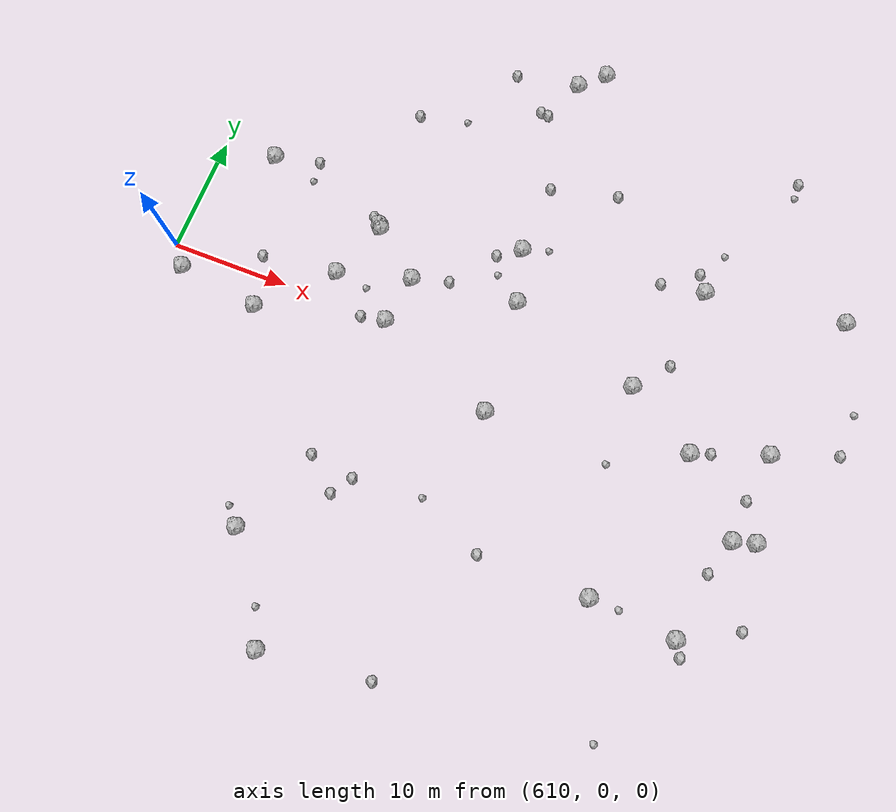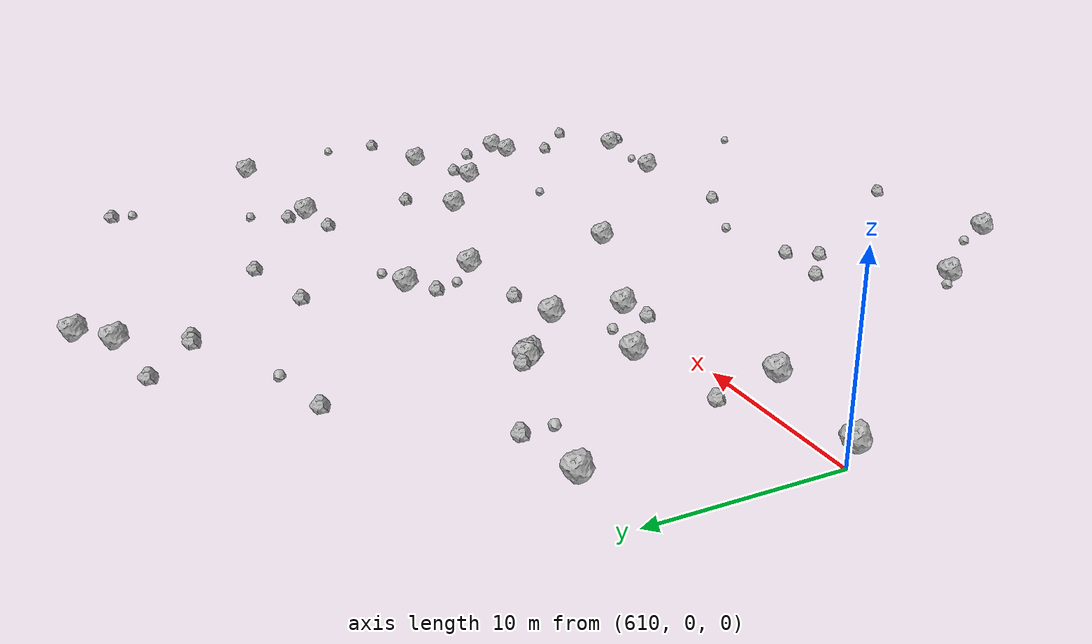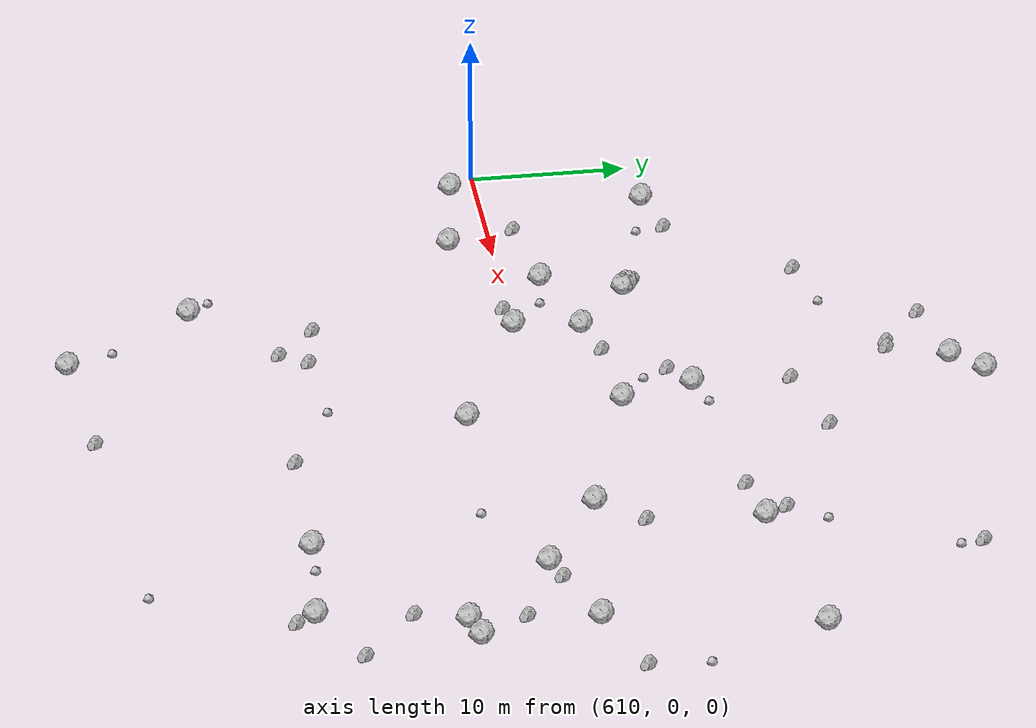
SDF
<sdf version="1.6">
 <world name="default">
  <include><uri>model://sun</uri></include>
  <model name="rock1_16_3">
   <include><uri>model://rock1</uri><pose>652.8113822010109 11.575875329103852 0.5 0 0 0</pose></include>
  </model>
  <model name="rock1_16_4">
   <include><uri>model://rock1</uri><pose>624.7452693285458 -19.875400816123296 0.5 0 0 0</pose></include>
  </model>
  <model name="rock1_16_5">
   <include><uri>model://rock1</uri><pose>625.5058408585752 7.439092374292358 0.5 0 0 0</pose></include>
  </model>
  <model name="rock1_16_6">
   <include><uri>model://rock1</uri><pose>664.4190022719677 13.078354084958931 0.5 0 0 0</pose></include>
  </model>
  <model name="rock1_16_7">
   <include><uri>model://rock1</uri><pose>655.9053518943946 -1.8370863910847888 0.5 0 0 0</pose></include>
  </model>
  <model name="rock1_16_8">
   <include><uri>model://rock1</uri><pose>639.4860848663566 -4.370460564215623 0.5 0 0 0</pose></include>
  </model>
  <model name="rock1_16_9">
   <include><uri>model://rock1</uri><pose>659.4425188022926 -15.952277925065957 0.5 0 0 0</pose></include>
  </model>
  <model name="rock1_16_10">
   <include><uri>model://rock1</uri><pose>630.0716314389078 -27.86049208176475 0.5 0 0 0</pose></include>
  </model>
  <model name="rock1_16_11">
   <include><uri>model://rock1</uri><pose>652.2455238392317 -15.325157966763786 0.5 0 0 0</pose></include>
  </model>
  <model name="rock1_16_12">
   <include><uri>model://rock1</uri><pose>662.946322659077 -6.799191320901745 0.5 0 0 0</pose></include>
  </model>
  <model name="rock1_16_13">
   <include><uri>model://rock1</uri><pose>637.3608191486551 9.80253033447822 0.5 0 0 0</pose></include>
  </model>
  <model name="rock1_16_14">
   <include><uri>model://rock1</uri><pose>661.8782736975841 0.29869167839230926 0.5 0 0 0</pose></include>
  </model>
  <model name="rock1_16_15">
   <include><uri>model://rock1</uri><pose>638.6219033009281 5.28745407421161 0.5 0 0 0</pose></include>
  </model>
  <model name="rock1_16_16">
   <include><uri>model://rock1</uri><pose>638.4473673328157 27.856359605232186 0.5 0 0 0</pose></include>
  </model>
  <model name="rock1_16_17">
   <include><uri>model://rock1</uri><pose>649.8519412453524 1.8063054681210708 0.5 0 0 0</pose></include>
  </model>
  <model name="rock1_16_18">
   <include><uri>model://rock1</uri><pose>636.479943800253 26.03775795914337 0.5 0 0 0</pose></include>
  </model>
  <model name="rock1_16_19">
   <include><uri>model://rock1</uri><pose>618.4463597926385 -2.661704224964243 0.5 0 0 0</pose></include>
  </model>
  <model name="rock1_16_20">
   <include><uri>model://rock1</uri><pose>623.646097492715 2.441293184448071 0.5 0 0 0</pose></include>
  </model>
  <model name="rock1_16_21">
   <include><uri>model://rock1</uri><pose>625.315379637448 7.6464784283924985 0.5 0 0 0</pose></include>
  </model>
  <model name="rock1_16_22">
   <include><uri>model://rock1</uri><pose>611.4278234324584 -1.6019575807642852 0.5 0 0 0</pose></include>
  </model>
  <model name="rock1_16_23">
   <include><uri>model://rock1</uri><pose>661.1379934349494 -7.285321223108603 0.5 0 0 0</pose></include>
  </model>
  <model name="rock1_16_24">
   <include><uri>model://rock1</uri><pose>614.5455005580939 10.383470501435333 0.5 0 0 0</pose></include>
  </model>
  <model name="rock1_16_25">
   <include><uri>model://rock1</uri><pose>629.0507662889088 -0.030554161765358856 0.5 0 0 0</pose></include>
  </model>
  <model name="rock1_16_26">
   <include><uri>model://rock1</uri><pose>629.6963357808771 4.121811985636789 0.5 0 0 0</pose></include>
  </model>
  <model name="rock2_16_0">
   <include><uri>model://rock2</uri><pose>652.1457128195802 4.529733856892342 0.3 0 0 0</pose></include>
  </model>
  <model name="rock2_16_1">
   <include><uri>model://rock2</uri><pose>657.4609462581518 -1.253711214641676 0.3 0 0 0</pose></include>
  </model>
  <model name="rock2_16_2">
   <include><uri>model://rock2</uri><pose>661.228198631823 -3.8784117495856947 0.3 0 0 0</pose></include>
  </model>
  <model name="rock2_16_3">
   <include><uri>model://rock2</uri><pose>617.2887587378652 1.6331644424122338 0.3 0 0 0</pose></include>
  </model>
  <model name="rock2_16_4">
   <include><uri>model://rock2</uri><pose>630.5356775278608 -14.847249684269737 0.3 0 0 0</pose></include>
  </model>
  <model name="rock2_16_5">
   <include><uri>model://rock2</uri><pose>634.3210164658 22.48363437847444 0.3 0 0 0</pose></include>
  </model>
  <model name="rock2_16_6">
   <include><uri>model://rock2</uri><pose>667.0973096686382 2.183418624258934 0.3 0 0 0</pose></include>
  </model>
  <model name="rock2_16_7">
   <include><uri>model://rock2</uri><pose>626.9883671273661 -0.39756906581334306 0.3 0 0 0</pose></include>
  </model>
  <model name="rock2_16_8">
   <include><uri>model://rock2</uri><pose>624.6310380497455 8.187120134401589 0.3 0 0 0</pose></include>
  </model>
  <model name="rock2_16_9">
   <include><uri>model://rock2</uri><pose>663.9557445517765 -13.59037033963654 0.3 0 0 0</pose></include>
  </model>
  <model name="rock2_16_10">
   <include><uri>model://rock2</uri><pose>624.6622519137682 18.419885555201915 0.3 0 0 0</pose></include>
  </model>
  <model name="rock2_16_11">
   <include><uri>model://rock2</uri><pose>639.115497046886 -26.90041680656168 0.3 0 0 0</pose></include>
  </model>
  <model name="rock2_16_12">
   <include><uri>model://rock2</uri><pose>635.0000865921218 22.381051106731256 0.3 0 0 0</pose></include>
  </model>
  <model name="rock2_16_13">
   <include><uri>model://rock2</uri><pose>651.9303335109051 12.977413887586962 0.3 0 0 0</pose></include>
  </model>
  <model name="rock2_16_14">
   <include><uri>model://rock2</uri><pose>637.6290378826051 15.876106623638016 0.3 0 0 0</pose></include>
  </model>
  <model name="rock2_16_15">
   <include><uri>model://rock2</uri><pose>660.1314597887376 -17.108502341813235 0.3 0 0 0</pose></include>
  </model>
  <model name="rock2_16_16">
   <include><uri>model://rock2</uri><pose>643.0196391335161 -15.255884574993493 0.3 0 0 0</pose></include>
  </model>
  <model name="rock2_16_17">
   <include><uri>model://rock2</uri><pose>649.1334488295686 11.024731397666486 0.3 0 0 0</pose></include>
  </model>
  <model name="rock2_16_18">
   <include><uri>model://rock2</uri><pose>618.3045015778855 11.208682016958704 0.3 0 0 0</pose></include>
  </model>
  <model name="rock2_16_19">
   <include><uri>model://rock2</uri><pose>660.1638288273157 -10.333648942107306 0.3 0 0 0</pose></include>
  </model>
  <model name="rock2_16_20">
   <include><uri>model://rock2</uri><pose>631.1309031413697 25.103287645112708 0.3 0 0 0</pose></include>
  </model>
  <model name="rock2_16_21">
   <include><uri>model://rock2</uri><pose>627.9005326907974 -12.488126163520295 0.3 0 0 0</pose></include>
  </model>
  <model name="rock2_16_22">
   <include><uri>model://rock2</uri><pose>632.698669859319 4.959174176223684 0.3 0 0 0</pose></include>
  </model>
  <model name="rock2_16_23">
   <include><uri>model://rock2</uri><pose>643.2342198857581 17.23887230300494 0.3 0 0 0</pose></include>
  </model>
  <model name="rock2_16_24">
   <include><uri>model://rock2</uri><pose>631.6597742558712 -13.131945579962078 0.3 0 0 0</pose></include>
  </model>
  <model name="rock2_16_25">
   <include><uri>model://rock2</uri><pose>635.5111933237649 8.559491530562873 0.3 0 0 0</pose></include>
  </model>
  <model name="rock2_16_26">
   <include><uri>model://rock2</uri><pose>657.1831575888685 23.74765362479289 0.3 0 0 0</pose></include>
  </model>
  <model name="rock3_16_0">
   <include><uri>model://rock3</uri><pose>628.6884259474223 19.28992643783527 0.2 0 0 0</pose></include>
  </model>
  <model name="rock3_16_1">
   <include><uri>model://rock3</uri><pose>636.2163591793071 6.976647269167842 0.2 0 0 0</pose></include>
  </model>
  <model name="rock3_16_2">
   <include><uri>model://rock3</uri><pose>653.3512366973091 15.217836974991734 0.2 0 0 0</pose></include>
  </model>
  <model name="rock3_16_3">
   <include><uri>model://rock3</uri><pose>654.6512290752482 -15.390525172006946 0.2 0 0 0</pose></include>
  </model>
  <model name="rock3_16_4">
   <include><uri>model://rock3</uri><pose>628.6369893148119 -24.978083936886648 0.2 0 0 0</pose></include>
  </model>
  <model name="rock3_16_5">
   <include><uri>model://rock3</uri><pose>639.4454408576134 10.498912284765844 0.2 0 0 0</pose></include>
  </model>
  <model name="rock3_16_6">
   <include><uri>model://rock3</uri><pose>626.4183304128418 2.027396489629645 0.2 0 0 0</pose></include>
  </model>
  <model name="rock3_16_7">
   <include><uri>model://rock3</uri><pose>667.2053462829314 5.8136881203618245 0.2 0 0 0</pose></include>
  </model>
  <model name="rock3_16_8">
   <include><uri>model://rock3</uri><pose>623.4703204941202 -18.560706163316574 0.2 0 0 0</pose></include>
  </model>
  <model name="rock3_16_9">
   <include><uri>model://rock3</uri><pose>637.3879655345182 -12.652266801611582 0.2 0 0 0</pose></include>
  </model>
  <model name="rock3_16_10">
   <include><uri>model://rock3</uri><pose>649.9462242779464 -5.000652499776038 0.2 0 0 0</pose></include>
  </model>
  <model name="rock3_16_11">
   <include><uri>model://rock3</uri><pose>656.1376888630257 -25.26765330351411 0.2 0 0 0</pose></include>
  </model>
  <model name="rock3_16_12">
   <include><uri>model://rock3</uri><pose>618.4482103976937 9.426597659258917 0.2 0 0 0</pose></include>
  </model>
  <model name="rock3_16_13">
   <include><uri>model://rock3</uri><pose>657.2278758952222 22.386097843042712 0.2 0 0 0</pose></include>
  </model>
 </world>
</sdf>
